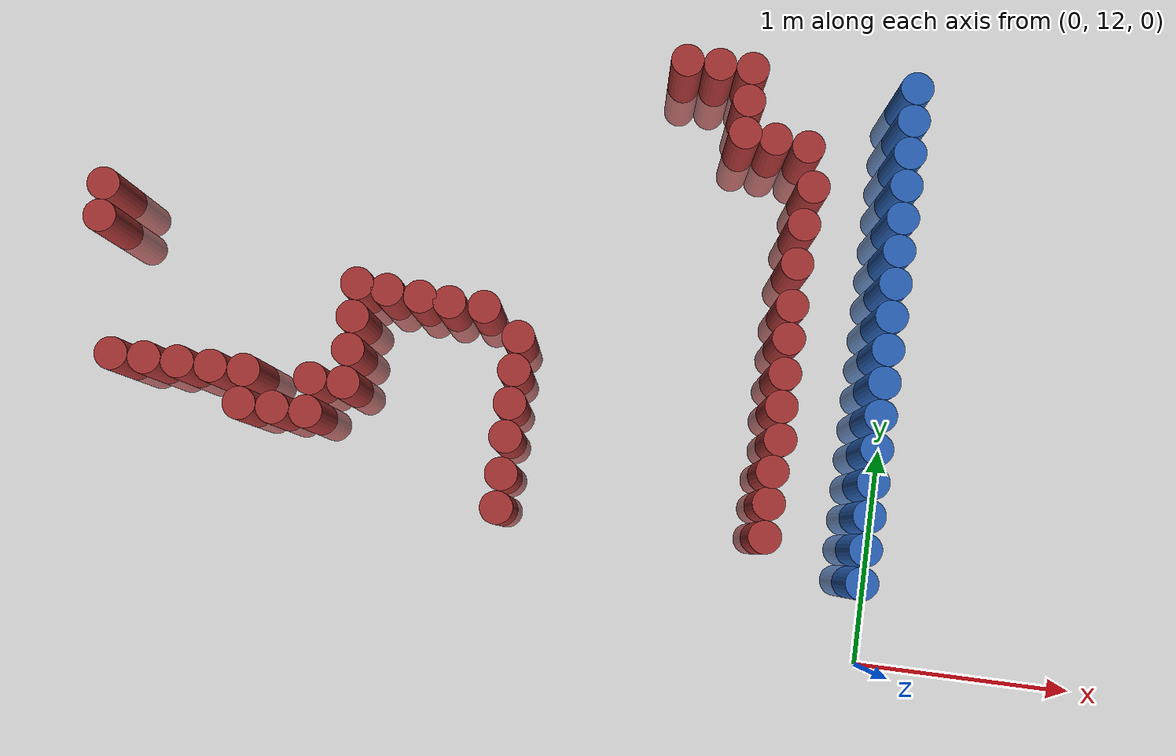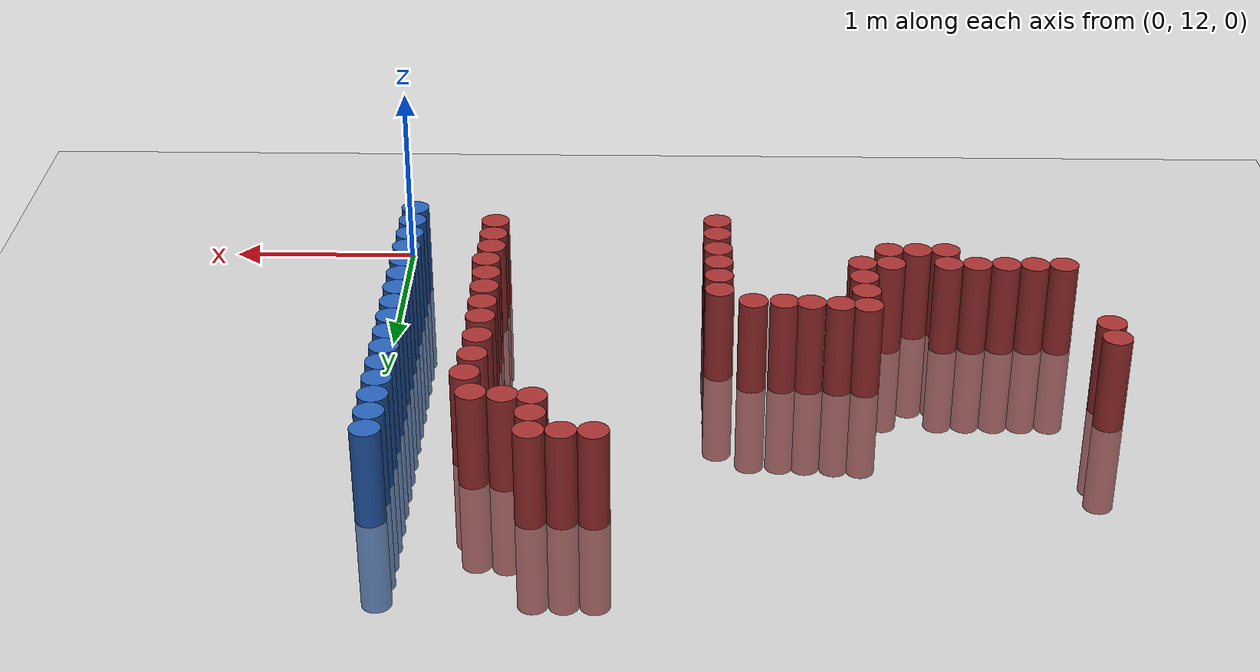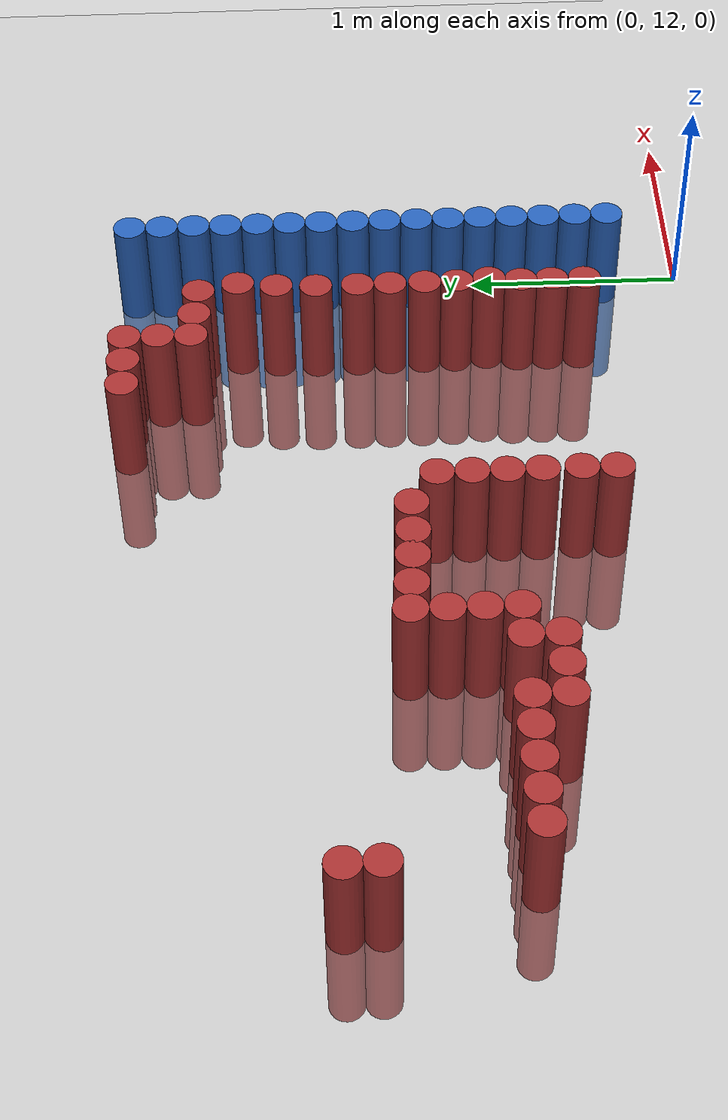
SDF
<sdf version="1.6">
 <world name="default">
  <model name="ground_plane">
   <static>1</static>
   <link name="link">
    <collision name="collision">
     <geometry><plane><normal>0 0 1</normal><size>100 100</size></plane></geometry>
     <surface><friction><ode><mu>100</mu><mu2>50</mu2></ode></friction></surface>
    </collision>
    <visual name="visual">
     <cast_shadows>0</cast_shadows>
     <geometry><plane><normal>0 0 1</normal><size>100 100</size></plane></geometry>
     <material>
      <script><uri>file://media/materials/scripts/gazebo.material</uri><name>Gazebo/Grey</name></script>
     </material>
    </visual>
   </link>
  </model>
  <model name="unit_cylinder_1194">
   <static>1</static>
   <pose>-3.525 12.975 0 0 -0 0</pose>
   <link name="link">
    <inertial>
     <mass>1</mass>
     <inertia><ixx>0.145833</ixx><ixy>0</ixy><ixz>0</ixz><iyy>0.145833</iyy><iyz>0</iyz><izz>0.125</izz></inertia>
    </inertial>
    <collision name="collision">
     <geometry><cylinder><radius>0.075</radius><length>1</length></cylinder></geometry>
    </collision>
    <visual name="visual">
     <geometry><cylinder><radius>0.075</radius><length>1</length></cylinder></geometry>
     <material><ambient>0.648 0.192 0.192 1</ambient><diffuse>0.648 0.192 0.192 1</diffuse></material>
     <material>
      <script><name>Gazebo/Grey</name><uri>file://media/materials/scripts/gazebo.material</uri></script>
     </material>
    </visual>
   </link>
  </model>
  <model name="unit_cylinder_1220">
   <static>1</static>
   <pose>-3.375 12.975 0 0 -0 0</pose>
   <link name="link">
    <inertial>
     <mass>1</mass>
     <inertia><ixx>0.145833</ixx><ixy>0</ixy><ixz>0</ixz><iyy>0.145833</iyy><iyz>0</iyz><izz>0.125</izz></inertia>
    </inertial>
    <collision name="collision">
     <geometry><cylinder><radius>0.075</radius><length>1</length></cylinder></geometry>
    </collision>
    <visual name="visual">
     <geometry><cylinder><radius>0.075</radius><length>1</length></cylinder></geometry>
     <material><ambient>0.648 0.192 0.192 1</ambient><diffuse>0.648 0.192 0.192 1</diffuse></material>
     <material>
      <script><name>Gazebo/Grey</name><uri>file://media/materials/scripts/gazebo.material</uri></script>
     </material>
    </visual>
   </link>
  </model>
  <model name="unit_cylinder_1238">
   <static>1</static>
   <pose>-3.225 12.975 0 0 -0 0</pose>
   <link name="link">
    <inertial>
     <mass>1</mass>
     <inertia><ixx>0.145833</ixx><ixy>0</ixy><ixz>0</ixz><iyy>0.145833</iyy><iyz>0</iyz><izz>0.125</izz></inertia>
    </inertial>
    <collision name="collision">
     <geometry><cylinder><radius>0.075</radius><length>1</length></cylinder></geometry>
    </collision>
    <visual name="visual">
     <geometry><cylinder><radius>0.075</radius><length>1</length></cylinder></geometry>
     <material><ambient>0.648 0.192 0.192 1</ambient><diffuse>0.648 0.192 0.192 1</diffuse></material>
     <material>
      <script><name>Gazebo/Grey</name><uri>file://media/materials/scripts/gazebo.material</uri></script>
     </material>
    </visual>
   </link>
  </model>
  <model name="unit_cylinder_1248">
   <static>1</static>
   <pose>-3.075 12.975 0 0 -0 0</pose>
   <link name="link">
    <inertial>
     <mass>1</mass>
     <inertia><ixx>0.145833</ixx><ixy>0</ixy><ixz>0</ixz><iyy>0.145833</iyy><iyz>0</iyz><izz>0.125</izz></inertia>
    </inertial>
    <collision name="collision">
     <geometry><cylinder><radius>0.075</radius><length>1</length></cylinder></geometry>
    </collision>
    <visual name="visual">
     <geometry><cylinder><radius>0.075</radius><length>1</length></cylinder></geometry>
     <material><ambient>0.648 0.192 0.192 1</ambient><diffuse>0.648 0.192 0.192 1</diffuse></material>
     <material>
      <script><name>Gazebo/Grey</name><uri>file://media/materials/scripts/gazebo.material</uri></script>
     </material>
    </visual>
   </link>
  </model>
  <model name="unit_cylinder_1261">
   <static>1</static>
   <pose>-2.925 12.825 0 0 -0 0</pose>
   <link name="link">
    <inertial>
     <mass>1</mass>
     <inertia><ixx>0.145833</ixx><ixy>0</ixy><ixz>0</ixz><iyy>0.145833</iyy><iyz>0</iyz><izz>0.125</izz></inertia>
    </inertial>
    <collision name="collision">
     <geometry><cylinder><radius>0.075</radius><length>1</length></cylinder></geometry>
    </collision>
    <visual name="visual">
     <geometry><cylinder><radius>0.075</radius><length>1</length></cylinder></geometry>
     <material><ambient>0.648 0.192 0.192 1</ambient><diffuse>0.648 0.192 0.192 1</diffuse></material>
     <material>
      <script><name>Gazebo/Grey</name><uri>file://media/materials/scripts/gazebo.material</uri></script>
     </material>
    </visual>
   </link>
  </model>
  <model name="unit_cylinder_1262">
   <static>1</static>
   <pose>-2.925 12.975 0 0 -0 0</pose>
   <link name="link">
    <inertial>
     <mass>1</mass>
     <inertia><ixx>0.145833</ixx><ixy>0</ixy><ixz>0</ixz><iyy>0.145833</iyy><iyz>0</iyz><izz>0.125</izz></inertia>
    </inertial>
    <collision name="collision">
     <geometry><cylinder><radius>0.075</radius><length>1</length></cylinder></geometry>
    </collision>
    <visual name="visual">
     <geometry><cylinder><radius>0.075</radius><length>1</length></cylinder></geometry>
     <material><ambient>0.648 0.192 0.192 1</ambient><diffuse>0.648 0.192 0.192 1</diffuse></material>
     <material>
      <script><name>Gazebo/Grey</name><uri>file://media/materials/scripts/gazebo.material</uri></script>
     </material>
    </visual>
   </link>
  </model>
  <model name="unit_cylinder_1270">
   <static>1</static>
   <pose>-2.775 12.825 0 0 -0 0</pose>
   <link name="link">
    <inertial>
     <mass>1</mass>
     <inertia><ixx>0.145833</ixx><ixy>0</ixy><ixz>0</ixz><iyy>0.145833</iyy><iyz>0</iyz><izz>0.125</izz></inertia>
    </inertial>
    <collision name="collision">
     <geometry><cylinder><radius>0.075</radius><length>1</length></cylinder></geometry>
    </collision>
    <visual name="visual">
     <geometry><cylinder><radius>0.075</radius><length>1</length></cylinder></geometry>
     <material><ambient>0.648 0.192 0.192 1</ambient><diffuse>0.648 0.192 0.192 1</diffuse></material>
     <material>
      <script><name>Gazebo/Grey</name><uri>file://media/materials/scripts/gazebo.material</uri></script>
     </material>
    </visual>
   </link>
  </model>
  <model name="unit_cylinder_1283">
   <static>1</static>
   <pose>-2.625 12.825 0 0 -0 0</pose>
   <link name="link">
    <inertial>
     <mass>1</mass>
     <inertia><ixx>0.145833</ixx><ixy>0</ixy><ixz>0</ixz><iyy>0.145833</iyy><iyz>0</iyz><izz>0.125</izz></inertia>
    </inertial>
    <collision name="collision">
     <geometry><cylinder><radius>0.075</radius><length>1</length></cylinder></geometry>
    </collision>
    <visual name="visual">
     <geometry><cylinder><radius>0.075</radius><length>1</length></cylinder></geometry>
     <material><ambient>0.648 0.192 0.192 1</ambient><diffuse>0.648 0.192 0.192 1</diffuse></material>
     <material>
      <script><name>Gazebo/Grey</name><uri>file://media/materials/scripts/gazebo.material</uri></script>
     </material>
    </visual>
   </link>
  </model>
  <model name="unit_cylinder_1284">
   <static>1</static>
   <pose>-2.625 12.975 0 0 -0 0</pose>
   <link name="link">
    <inertial>
     <mass>1</mass>
     <inertia><ixx>0.145833</ixx><ixy>0</ixy><ixz>0</ixz><iyy>0.145833</iyy><iyz>0</iyz><izz>0.125</izz></inertia>
    </inertial>
    <collision name="collision">
     <geometry><cylinder><radius>0.075</radius><length>1</length></cylinder></geometry>
    </collision>
    <visual name="visual">
     <geometry><cylinder><radius>0.075</radius><length>1</length></cylinder></geometry>
     <material><ambient>0.648 0.192 0.192 1</ambient><diffuse>0.648 0.192 0.192 1</diffuse></material>
     <material>
      <script><name>Gazebo/Grey</name><uri>file://media/materials/scripts/gazebo.material</uri></script>
     </material>
    </visual>
   </link>
  </model>
  <model name="unit_cylinder_1288">
   <static>1</static>
   <pose>-2.475 12.975 0 0 -0 0</pose>
   <link name="link">
    <inertial>
     <mass>1</mass>
     <inertia><ixx>0.145833</ixx><ixy>0</ixy><ixz>0</ixz><iyy>0.145833</iyy><iyz>0</iyz><izz>0.125</izz></inertia>
    </inertial>
    <collision name="collision">
     <geometry><cylinder><radius>0.075</radius><length>1</length></cylinder></geometry>
    </collision>
    <visual name="visual">
     <geometry><cylinder><radius>0.075</radius><length>1</length></cylinder></geometry>
     <material><ambient>0.648 0.192 0.192 1</ambient><diffuse>0.648 0.192 0.192 1</diffuse></material>
     <material>
      <script><name>Gazebo/Grey</name><uri>file://media/materials/scripts/gazebo.material</uri></script>
     </material>
    </visual>
   </link>
  </model>
  <model name="unit_cylinder_1289">
   <static>1</static>
   <pose>-2.475 13.125 0 0 -0 0</pose>
   <link name="link">
    <inertial>
     <mass>1</mass>
     <inertia><ixx>0.145833</ixx><ixy>0</ixy><ixz>0</ixz><iyy>0.145833</iyy><iyz>0</iyz><izz>0.125</izz></inertia>
    </inertial>
    <collision name="collision">
     <geometry><cylinder><radius>0.075</radius><length>1</length></cylinder></geometry>
    </collision>
    <visual name="visual">
     <geometry><cylinder><radius>0.075</radius><length>1</length></cylinder></geometry>
     <material><ambient>0.648 0.192 0.192 1</ambient><diffuse>0.648 0.192 0.192 1</diffuse></material>
     <material>
      <script><name>Gazebo/Grey</name><uri>file://media/materials/scripts/gazebo.material</uri></script>
     </material>
    </visual>
   </link>
  </model>
  <model name="unit_cylinder_1290">
   <static>1</static>
   <pose>-2.475 13.275 0 0 -0 0</pose>
   <link name="link">
    <inertial>
     <mass>1</mass>
     <inertia><ixx>0.145833</ixx><ixy>0</ixy><ixz>0</ixz><iyy>0.145833</iyy><iyz>0</iyz><izz>0.125</izz></inertia>
    </inertial>
    <collision name="collision">
     <geometry><cylinder><radius>0.075</radius><length>1</length></cylinder></geometry>
    </collision>
    <visual name="visual">
     <geometry><cylinder><radius>0.075</radius><length>1</length></cylinder></geometry>
     <material><ambient>0.648 0.192 0.192 1</ambient><diffuse>0.648 0.192 0.192 1</diffuse></material>
     <material>
      <script><name>Gazebo/Grey</name><uri>file://media/materials/scripts/gazebo.material</uri></script>
     </material>
    </visual>
   </link>
  </model>
  <model name="unit_cylinder_1291">
   <static>1</static>
   <pose>-2.475 13.425 0 0 -0 0</pose>
   <link name="link">
    <inertial>
     <mass>1</mass>
     <inertia><ixx>0.145833</ixx><ixy>0</ixy><ixz>0</ixz><iyy>0.145833</iyy><iyz>0</iyz><izz>0.125</izz></inertia>
    </inertial>
    <collision name="collision">
     <geometry><cylinder><radius>0.075</radius><length>1</length></cylinder></geometry>
    </collision>
    <visual name="visual">
     <geometry><cylinder><radius>0.075</radius><length>1</length></cylinder></geometry>
     <material><ambient>0.648 0.192 0.192 1</ambient><diffuse>0.648 0.192 0.192 1</diffuse></material>
     <material>
      <script><name>Gazebo/Grey</name><uri>file://media/materials/scripts/gazebo.material</uri></script>
     </material>
    </visual>
   </link>
  </model>
  <model name="unit_cylinder_1355">
   <static>1</static>
   <pose>-1.725 12.825 0 0 -0 0</pose>
   <link name="link">
    <inertial>
     <mass>1</mass>
     <inertia><ixx>0.145833</ixx><ixy>0</ixy><ixz>0</ixz><iyy>0.145833</iyy><iyz>0</iyz><izz>0.125</izz></inertia>
    </inertial>
    <collision name="collision">
     <geometry><cylinder><radius>0.075</radius><length>1</length></cylinder></geometry>
    </collision>
    <visual name="visual">
     <geometry><cylinder><radius>0.075</radius><length>1</length></cylinder></geometry>
     <material><ambient>0.648 0.192 0.192 1</ambient><diffuse>0.648 0.192 0.192 1</diffuse></material>
     <material>
      <script><name>Gazebo/Grey</name><uri>file://media/materials/scripts/gazebo.material</uri></script>
     </material>
    </visual>
   </link>
  </model>
  <model name="unit_cylinder_1356">
   <static>1</static>
   <pose>-1.725 12.975 0 0 -0 0</pose>
   <link name="link">
    <inertial>
     <mass>1</mass>
     <inertia><ixx>0.145833</ixx><ixy>0</ixy><ixz>0</ixz><iyy>0.145833</iyy><iyz>0</iyz><izz>0.125</izz></inertia>
    </inertial>
    <collision name="collision">
     <geometry><cylinder><radius>0.075</radius><length>1</length></cylinder></geometry>
    </collision>
    <visual name="visual">
     <geometry><cylinder><radius>0.075</radius><length>1</length></cylinder></geometry>
     <material><ambient>0.648 0.192 0.192 1</ambient><diffuse>0.648 0.192 0.192 1</diffuse></material>
     <material>
      <script><name>Gazebo/Grey</name><uri>file://media/materials/scripts/gazebo.material</uri></script>
     </material>
    </visual>
   </link>
  </model>
  <model name="unit_cylinder_1357">
   <static>1</static>
   <pose>-1.725 13.125 0 0 -0 0</pose>
   <link name="link">
    <inertial>
     <mass>1</mass>
     <inertia><ixx>0.145833</ixx><ixy>0</ixy><ixz>0</ixz><iyy>0.145833</iyy><iyz>0</iyz><izz>0.125</izz></inertia>
    </inertial>
    <collision name="collision">
     <geometry><cylinder><radius>0.075</radius><length>1</length></cylinder></geometry>
    </collision>
    <visual name="visual">
     <geometry><cylinder><radius>0.075</radius><length>1</length></cylinder></geometry>
     <material><ambient>0.648 0.192 0.192 1</ambient><diffuse>0.648 0.192 0.192 1</diffuse></material>
     <material>
      <script><name>Gazebo/Grey</name><uri>file://media/materials/scripts/gazebo.material</uri></script>
     </material>
    </visual>
   </link>
  </model>
  <model name="unit_cylinder_1358">
   <static>1</static>
   <pose>-1.725 13.275 0 0 -0 0</pose>
   <link name="link">
    <inertial>
     <mass>1</mass>
     <inertia><ixx>0.145833</ixx><ixy>0</ixy><ixz>0</ixz><iyy>0.145833</iyy><iyz>0</iyz><izz>0.125</izz></inertia>
    </inertial>
    <collision name="collision">
     <geometry><cylinder><radius>0.075</radius><length>1</length></cylinder></geometry>
    </collision>
    <visual name="visual">
     <geometry><cylinder><radius>0.075</radius><length>1</length></cylinder></geometry>
     <material><ambient>0.648 0.192 0.192 1</ambient><diffuse>0.648 0.192 0.192 1</diffuse></material>
     <material>
      <script><name>Gazebo/Grey</name><uri>file://media/materials/scripts/gazebo.material</uri></script>
     </material>
    </visual>
   </link>
  </model>
  <model name="unit_cylinder_1442">
   <static>1</static>
   <pose>-1.125 14.625 0 0 -0 0</pose>
   <link name="link">
    <inertial>
     <mass>1</mass>
     <inertia><ixx>0.145833</ixx><ixy>0</ixy><ixz>0</ixz><iyy>0.145833</iyy><iyz>0</iyz><izz>0.125</izz></inertia>
    </inertial>
    <collision name="collision">
     <geometry><cylinder><radius>0.075</radius><length>1</length></cylinder></geometry>
    </collision>
    <visual name="visual">
     <geometry><cylinder><radius>0.075</radius><length>1</length></cylinder></geometry>
     <material><ambient>0.648 0.192 0.192 1</ambient><diffuse>0.648 0.192 0.192 1</diffuse></material>
     <material>
      <script><name>Gazebo/Grey</name><uri>file://media/materials/scripts/gazebo.material</uri></script>
     </material>
    </visual>
   </link>
  </model>
  <model name="unit_cylinder_1465">
   <static>1</static>
   <pose>-0.975 14.625 0 0 -0 0</pose>
   <link name="link">
    <inertial>
     <mass>1</mass>
     <inertia><ixx>0.145833</ixx><ixy>0</ixy><ixz>0</ixz><iyy>0.145833</iyy><iyz>0</iyz><izz>0.125</izz></inertia>
    </inertial>
    <collision name="collision">
     <geometry><cylinder><radius>0.075</radius><length>1</length></cylinder></geometry>
    </collision>
    <visual name="visual">
     <geometry><cylinder><radius>0.075</radius><length>1</length></cylinder></geometry>
     <material><ambient>0.648 0.192 0.192 1</ambient><diffuse>0.648 0.192 0.192 1</diffuse></material>
     <material>
      <script><name>Gazebo/Grey</name><uri>file://media/materials/scripts/gazebo.material</uri></script>
     </material>
    </visual>
   </link>
  </model>
  <model name="unit_cylinder_1482">
   <static>1</static>
   <pose>-0.825 14.325 0 0 -0 0</pose>
   <link name="link">
    <inertial>
     <mass>1</mass>
     <inertia><ixx>0.145833</ixx><ixy>0</ixy><ixz>0</ixz><iyy>0.145833</iyy><iyz>0</iyz><izz>0.125</izz></inertia>
    </inertial>
    <collision name="collision">
     <geometry><cylinder><radius>0.075</radius><length>1</length></cylinder></geometry>
    </collision>
    <visual name="visual">
     <geometry><cylinder><radius>0.075</radius><length>1</length></cylinder></geometry>
     <material><ambient>0.648 0.192 0.192 1</ambient><diffuse>0.648 0.192 0.192 1</diffuse></material>
     <material>
      <script><name>Gazebo/Grey</name><uri>file://media/materials/scripts/gazebo.material</uri></script>
     </material>
    </visual>
   </link>
  </model>
  <model name="unit_cylinder_1483">
   <static>1</static>
   <pose>-0.825 14.475 0 0 -0 0</pose>
   <link name="link">
    <inertial>
     <mass>1</mass>
     <inertia><ixx>0.145833</ixx><ixy>0</ixy><ixz>0</ixz><iyy>0.145833</iyy><iyz>0</iyz><izz>0.125</izz></inertia>
    </inertial>
    <collision name="collision">
     <geometry><cylinder><radius>0.075</radius><length>1</length></cylinder></geometry>
    </collision>
    <visual name="visual">
     <geometry><cylinder><radius>0.075</radius><length>1</length></cylinder></geometry>
     <material><ambient>0.648 0.192 0.192 1</ambient><diffuse>0.648 0.192 0.192 1</diffuse></material>
     <material>
      <script><name>Gazebo/Grey</name><uri>file://media/materials/scripts/gazebo.material</uri></script>
     </material>
    </visual>
   </link>
  </model>
  <model name="unit_cylinder_1484">
   <static>1</static>
   <pose>-0.825 14.625 0 0 -0 0</pose>
   <link name="link">
    <inertial>
     <mass>1</mass>
     <inertia><ixx>0.145833</ixx><ixy>0</ixy><ixz>0</ixz><iyy>0.145833</iyy><iyz>0</iyz><izz>0.125</izz></inertia>
    </inertial>
    <collision name="collision">
     <geometry><cylinder><radius>0.075</radius><length>1</length></cylinder></geometry>
    </collision>
    <visual name="visual">
     <geometry><cylinder><radius>0.075</radius><length>1</length></cylinder></geometry>
     <material><ambient>0.648 0.192 0.192 1</ambient><diffuse>0.648 0.192 0.192 1</diffuse></material>
     <material>
      <script><name>Gazebo/Grey</name><uri>file://media/materials/scripts/gazebo.material</uri></script>
     </material>
    </visual>
   </link>
  </model>
  <model name="unit_cylinder_1522">
   <static>1</static>
   <pose>-0.525 12.525 0 0 -0 0</pose>
   <link name="link">
    <inertial>
     <mass>1</mass>
     <inertia><ixx>0.145833</ixx><ixy>0</ixy><ixz>0</ixz><iyy>0.145833</iyy><iyz>0</iyz><izz>0.125</izz></inertia>
    </inertial>
    <collision name="collision">
     <geometry><cylinder><radius>0.075</radius><length>1</length></cylinder></geometry>
    </collision>
    <visual name="visual">
     <geometry><cylinder><radius>0.075</radius><length>1</length></cylinder></geometry>
     <material><ambient>0.648 0.192 0.192 1</ambient><diffuse>0.648 0.192 0.192 1</diffuse></material>
     <material>
      <script><name>Gazebo/Grey</name><uri>file://media/materials/scripts/gazebo.material</uri></script>
     </material>
    </visual>
   </link>
  </model>
  <model name="unit_cylinder_1523">
   <static>1</static>
   <pose>-0.525 12.675 0 0 -0 0</pose>
   <link name="link">
    <inertial>
     <mass>1</mass>
     <inertia><ixx>0.145833</ixx><ixy>0</ixy><ixz>0</ixz><iyy>0.145833</iyy><iyz>0</iyz><izz>0.125</izz></inertia>
    </inertial>
    <collision name="collision">
     <geometry><cylinder><radius>0.075</radius><length>1</length></cylinder></geometry>
    </collision>
    <visual name="visual">
     <geometry><cylinder><radius>0.075</radius><length>1</length></cylinder></geometry>
     <material><ambient>0.648 0.192 0.192 1</ambient><diffuse>0.648 0.192 0.192 1</diffuse></material>
     <material>
      <script><name>Gazebo/Grey</name><uri>file://media/materials/scripts/gazebo.material</uri></script>
     </material>
    </visual>
   </link>
  </model>
  <model name="unit_cylinder_1602">
   <static>1</static>
   <pose>-0.075 12.375 0 0 -0 0</pose>
   <link name="link">
    <inertial>
     <mass>1</mass>
     <inertia><ixx>0.145833</ixx><ixy>0</ixy><ixz>0</ixz><iyy>0.145833</iyy><iyz>0</iyz><izz>0.125</izz></inertia>
    </inertial>
    <collision name="collision">
     <geometry><cylinder><radius>0.075</radius><length>1</length></cylinder></geometry>
    </collision>
    <visual name="visual">
     <geometry><cylinder><radius>0.075</radius><length>1</length></cylinder></geometry>
     <material><ambient>0.152 0.379 0.72 1</ambient><diffuse>0.152 0.379 0.72 1</diffuse></material>
     <material>
      <script><name>Gazebo/Grey</name><uri>file://media/materials/scripts/gazebo.material</uri></script>
     </material>
    </visual>
   </link>
  </model>
  <model name="unit_cylinder_1603">
   <static>1</static>
   <pose>-0.075 12.525 0 0 -0 0</pose>
   <link name="link">
    <inertial>
     <mass>1</mass>
     <inertia><ixx>0.145833</ixx><ixy>0</ixy><ixz>0</ixz><iyy>0.145833</iyy><iyz>0</iyz><izz>0.125</izz></inertia>
    </inertial>
    <collision name="collision">
     <geometry><cylinder><radius>0.075</radius><length>1</length></cylinder></geometry>
    </collision>
    <visual name="visual">
     <geometry><cylinder><radius>0.075</radius><length>1</length></cylinder></geometry>
     <material><ambient>0.152 0.379 0.72 1</ambient><diffuse>0.152 0.379 0.72 1</diffuse></material>
     <material>
      <script><name>Gazebo/Grey</name><uri>file://media/materials/scripts/gazebo.material</uri></script>
     </material>
    </visual>
   </link>
  </model>
  <model name="unit_cylinder_1604">
   <static>1</static>
   <pose>-0.075 12.675 0 0 -0 0</pose>
   <link name="link">
    <inertial>
     <mass>1</mass>
     <inertia><ixx>0.145833</ixx><ixy>0</ixy><ixz>0</ixz><iyy>0.145833</iyy><iyz>0</iyz><izz>0.125</izz></inertia>
    </inertial>
    <collision name="collision">
     <geometry><cylinder><radius>0.075</radius><length>1</length></cylinder></geometry>
    </collision>
    <visual name="visual">
     <geometry><cylinder><radius>0.075</radius><length>1</length></cylinder></geometry>
     <material><ambient>0.152 0.379 0.72 1</ambient><diffuse>0.152 0.379 0.72 1</diffuse></material>
     <material>
      <script><name>Gazebo/Grey</name><uri>file://media/materials/scripts/gazebo.material</uri></script>
     </material>
    </visual>
   </link>
  </model>
  <model name="unit_cylinder_1605">
   <static>1</static>
   <pose>-0.075 12.825 0 0 -0 0</pose>
   <link name="link">
    <inertial>
     <mass>1</mass>
     <inertia><ixx>0.145833</ixx><ixy>0</ixy><ixz>0</ixz><iyy>0.145833</iyy><iyz>0</iyz><izz>0.125</izz></inertia>
    </inertial>
    <collision name="collision">
     <geometry><cylinder><radius>0.075</radius><length>1</length></cylinder></geometry>
    </collision>
    <visual name="visual">
     <geometry><cylinder><radius>0.075</radius><length>1</length></cylinder></geometry>
     <material><ambient>0.152 0.379 0.72 1</ambient><diffuse>0.152 0.379 0.72 1</diffuse></material>
     <material>
      <script><name>Gazebo/Grey</name><uri>file://media/materials/scripts/gazebo.material</uri></script>
     </material>
    </visual>
   </link>
  </model>
  <model name="unit_cylinder_1606">
   <static>1</static>
   <pose>-0.075 12.975 0 0 -0 0</pose>
   <link name="link">
    <inertial>
     <mass>1</mass>
     <inertia><ixx>0.145833</ixx><ixy>0</ixy><ixz>0</ixz><iyy>0.145833</iyy><iyz>0</iyz><izz>0.125</izz></inertia>
    </inertial>
    <collision name="collision">
     <geometry><cylinder><radius>0.075</radius><length>1</length></cylinder></geometry>
    </collision>
    <visual name="visual">
     <geometry><cylinder><radius>0.075</radius><length>1</length></cylinder></geometry>
     <material><ambient>0.152 0.379 0.72 1</ambient><diffuse>0.152 0.379 0.72 1</diffuse></material>
     <material>
      <script><name>Gazebo/Grey</name><uri>file://media/materials/scripts/gazebo.material</uri></script>
     </material>
    </visual>
   </link>
  </model>
  <model name="unit_cylinder_1607">
   <static>1</static>
   <pose>-0.075 13.125 0 0 -0 0</pose>
   <link name="link">
    <inertial>
     <mass>1</mass>
     <inertia><ixx>0.145833</ixx><ixy>0</ixy><ixz>0</ixz><iyy>0.145833</iyy><iyz>0</iyz><izz>0.125</izz></inertia>
    </inertial>
    <collision name="collision">
     <geometry><cylinder><radius>0.075</radius><length>1</length></cylinder></geometry>
    </collision>
    <visual name="visual">
     <geometry><cylinder><radius>0.075</radius><length>1</length></cylinder></geometry>
     <material><ambient>0.152 0.379 0.72 1</ambient><diffuse>0.152 0.379 0.72 1</diffuse></material>
     <material>
      <script><name>Gazebo/Grey</name><uri>file://media/materials/scripts/gazebo.material</uri></script>
     </material>
    </visual>
   </link>
  </model>
  <model name="unit_cylinder_1608">
   <static>1</static>
   <pose>-0.075 13.275 0 0 -0 0</pose>
   <link name="link">
    <inertial>
     <mass>1</mass>
     <inertia><ixx>0.145833</ixx><ixy>0</ixy><ixz>0</ixz><iyy>0.145833</iyy><iyz>0</iyz><izz>0.125</izz></inertia>
    </inertial>
    <collision name="collision">
     <geometry><cylinder><radius>0.075</radius><length>1</length></cylinder></geometry>
    </collision>
    <visual name="visual">
     <geometry><cylinder><radius>0.075</radius><length>1</length></cylinder></geometry>
     <material><ambient>0.152 0.379 0.72 1</ambient><diffuse>0.152 0.379 0.72 1</diffuse></material>
     <material>
      <script><name>Gazebo/Grey</name><uri>file://media/materials/scripts/gazebo.material</uri></script>
     </material>
    </visual>
   </link>
  </model>
  <model name="unit_cylinder_1609">
   <static>1</static>
   <pose>-0.075 13.425 0 0 -0 0</pose>
   <link name="link">
    <inertial>
     <mass>1</mass>
     <inertia><ixx>0.145833</ixx><ixy>0</ixy><ixz>0</ixz><iyy>0.145833</iyy><iyz>0</iyz><izz>0.125</izz></inertia>
    </inertial>
    <collision name="collision">
     <geometry><cylinder><radius>0.075</radius><length>1</length></cylinder></geometry>
    </collision>
    <visual name="visual">
     <geometry><cylinder><radius>0.075</radius><length>1</length></cylinder></geometry>
     <material><ambient>0.152 0.379 0.72 1</ambient><diffuse>0.152 0.379 0.72 1</diffuse></material>
     <material>
      <script><name>Gazebo/Grey</name><uri>file://media/materials/scripts/gazebo.material</uri></script>
     </material>
    </visual>
   </link>
  </model>
  <model name="unit_cylinder_1610">
   <static>1</static>
   <pose>-0.075 13.575 0 0 -0 0</pose>
   <link name="link">
    <inertial>
     <mass>1</mass>
     <inertia><ixx>0.145833</ixx><ixy>0</ixy><ixz>0</ixz><iyy>0.145833</iyy><iyz>0</iyz><izz>0.125</izz></inertia>
    </inertial>
    <collision name="collision">
     <geometry><cylinder><radius>0.075</radius><length>1</length></cylinder></geometry>
    </collision>
    <visual name="visual">
     <geometry><cylinder><radius>0.075</radius><length>1</length></cylinder></geometry>
     <material><ambient>0.152 0.379 0.72 1</ambient><diffuse>0.152 0.379 0.72 1</diffuse></material>
     <material>
      <script><name>Gazebo/Grey</name><uri>file://media/materials/scripts/gazebo.material</uri></script>
     </material>
    </visual>
   </link>
  </model>
  <model name="unit_cylinder_1611">
   <static>1</static>
   <pose>-0.075 13.725 0 0 -0 0</pose>
   <link name="link">
    <inertial>
     <mass>1</mass>
     <inertia><ixx>0.145833</ixx><ixy>0</ixy><ixz>0</ixz><iyy>0.145833</iyy><iyz>0</iyz><izz>0.125</izz></inertia>
    </inertial>
    <collision name="collision">
     <geometry><cylinder><radius>0.075</radius><length>1</length></cylinder></geometry>
    </collision>
    <visual name="visual">
     <geometry><cylinder><radius>0.075</radius><length>1</length></cylinder></geometry>
     <material><ambient>0.152 0.379 0.72 1</ambient><diffuse>0.152 0.379 0.72 1</diffuse></material>
     <material>
      <script><name>Gazebo/Grey</name><uri>file://media/materials/scripts/gazebo.material</uri></script>
     </material>
    </visual>
   </link>
  </model>
  <model name="unit_cylinder_1612">
   <static>1</static>
   <pose>-0.075 13.875 0 0 -0 0</pose>
   <link name="link">
    <inertial>
     <mass>1</mass>
     <inertia><ixx>0.145833</ixx><ixy>0</ixy><ixz>0</ixz><iyy>0.145833</iyy><iyz>0</iyz><izz>0.125</izz></inertia>
    </inertial>
    <collision name="collision">
     <geometry><cylinder><radius>0.075</radius><length>1</length></cylinder></geometry>
    </collision>
    <visual name="visual">
     <geometry><cylinder><radius>0.075</radius><length>1</length></cylinder></geometry>
     <material><ambient>0.152 0.379 0.72 1</ambient><diffuse>0.152 0.379 0.72 1</diffuse></material>
     <material>
      <script><name>Gazebo/Grey</name><uri>file://media/materials/scripts/gazebo.material</uri></script>
     </material>
    </visual>
   </link>
  </model>
  <model name="unit_cylinder_1613">
   <static>1</static>
   <pose>-0.075 14.025 0 0 -0 0</pose>
   <link name="link">
    <inertial>
     <mass>1</mass>
     <inertia><ixx>0.145833</ixx><ixy>0</ixy><ixz>0</ixz><iyy>0.145833</iyy><iyz>0</iyz><izz>0.125</izz></inertia>
    </inertial>
    <collision name="collision">
     <geometry><cylinder><radius>0.075</radius><length>1</length></cylinder></geometry>
    </collision>
    <visual name="visual">
     <geometry><cylinder><radius>0.075</radius><length>1</length></cylinder></geometry>
     <material><ambient>0.152 0.379 0.72 1</ambient><diffuse>0.152 0.379 0.72 1</diffuse></material>
     <material>
      <script><name>Gazebo/Grey</name><uri>file://media/materials/scripts/gazebo.material</uri></script>
     </material>
    </visual>
   </link>
  </model>
  <model name="unit_cylinder_1614">
   <static>1</static>
   <pose>-0.075 14.175 0 0 -0 0</pose>
   <link name="link">
    <inertial>
     <mass>1</mass>
     <inertia><ixx>0.145833</ixx><ixy>0</ixy><ixz>0</ixz><iyy>0.145833</iyy><iyz>0</iyz><izz>0.125</izz></inertia>
    </inertial>
    <collision name="collision">
     <geometry><cylinder><radius>0.075</radius><length>1</length></cylinder></geometry>
    </collision>
    <visual name="visual">
     <geometry><cylinder><radius>0.075</radius><length>1</length></cylinder></geometry>
     <material><ambient>0.152 0.379 0.72 1</ambient><diffuse>0.152 0.379 0.72 1</diffuse></material>
     <material>
      <script><name>Gazebo/Grey</name><uri>file://media/materials/scripts/gazebo.material</uri></script>
     </material>
    </visual>
   </link>
  </model>
  <model name="unit_cylinder_1615">
   <static>1</static>
   <pose>-0.075 14.325 0 0 -0 0</pose>
   <link name="link">
    <inertial>
     <mass>1</mass>
     <inertia><ixx>0.145833</ixx><ixy>0</ixy><ixz>0</ixz><iyy>0.145833</iyy><iyz>0</iyz><izz>0.125</izz></inertia>
    </inertial>
    <collision name="collision">
     <geometry><cylinder><radius>0.075</radius><length>1</length></cylinder></geometry>
    </collision>
    <visual name="visual">
     <geometry><cylinder><radius>0.075</radius><length>1</length></cylinder></geometry>
     <material><ambient>0.152 0.379 0.72 1</ambient><diffuse>0.152 0.379 0.72 1</diffuse></material>
     <material>
      <script><name>Gazebo/Grey</name><uri>file://media/materials/scripts/gazebo.material</uri></script>
     </material>
    </visual>
   </link>
  </model>
  <model name="unit_cylinder_1616">
   <static>1</static>
   <pose>-0.075 14.475 0 0 -0 0</pose>
   <link name="link">
    <inertial>
     <mass>1</mass>
     <inertia><ixx>0.145833</ixx><ixy>0</ixy><ixz>0</ixz><iyy>0.145833</iyy><iyz>0</iyz><izz>0.125</izz></inertia>
    </inertial>
    <collision name="collision">
     <geometry><cylinder><radius>0.075</radius><length>1</length></cylinder></geometry>
    </collision>
    <visual name="visual">
     <geometry><cylinder><radius>0.075</radius><length>1</length></cylinder></geometry>
     <material><ambient>0.152 0.379 0.72 1</ambient><diffuse>0.152 0.379 0.72 1</diffuse></material>
     <material>
      <script><name>Gazebo/Grey</name><uri>file://media/materials/scripts/gazebo.material</uri></script>
     </material>
    </visual>
   </link>
  </model>
  <model name="unit_cylinder_1617">
   <static>1</static>
   <pose>-0.075 14.625 0 0 -0 0</pose>
   <link name="link">
    <inertial>
     <mass>1</mass>
     <inertia><ixx>0.145833</ixx><ixy>0</ixy><ixz>0</ixz><iyy>0.145833</iyy><iyz>0</iyz><izz>0.125</izz></inertia>
    </inertial>
    <collision name="collision">
     <geometry><cylinder><radius>0.075</radius><length>1</length></cylinder></geometry>
    </collision>
    <visual name="visual">
     <geometry><cylinder><radius>0.075</radius><length>1</length></cylinder></geometry>
     <material><ambient>0.152 0.379 0.72 1</ambient><diffuse>0.152 0.379 0.72 1</diffuse></material>
     <material>
      <script><name>Gazebo/Grey</name><uri>file://media/materials/scripts/gazebo.material</uri></script>
     </material>
    </visual>
   </link>
  </model>
  <model name="unit_cylinder_1355_clone">
   <static>1</static>
   <pose>-1.72255 12.6582 0 0 -0 0</pose>
   <link name="link">
    <inertial>
     <mass>1</mass>
     <inertia><ixx>0.145833</ixx><ixy>0</ixy><ixz>0</ixz><iyy>0.145833</iyy><iyz>0</iyz><izz>0.125</izz></inertia>
    </inertial>
    <collision name="collision">
     <geometry><cylinder><radius>0.075</radius><length>1</length></cylinder></geometry>
    </collision>
    <visual name="visual">
     <geometry><cylinder><radius>0.075</radius><length>1</length></cylinder></geometry>
     <material><ambient>0.648 0.192 0.192 1</ambient><diffuse>0.648 0.192 0.192 1</diffuse></material>
     <material>
      <script><name>Gazebo/Grey</name><uri>file://media/materials/scripts/gazebo.material</uri></script>
     </material>
    </visual>
   </link>
  </model>
  <model name="unit_cylinder_1355_clone_0">
   <static>1</static>
   <pose>-1.72459 12.5067 0 0 -0 0</pose>
   <link name="link">
    <inertial>
     <mass>1</mass>
     <inertia><ixx>0.145833</ixx><ixy>0</ixy><ixz>0</ixz><iyy>0.145833</iyy><iyz>0</iyz><izz>0.125</izz></inertia>
    </inertial>
    <collision name="collision">
     <geometry><cylinder><radius>0.075</radius><length>1</length></cylinder></geometry>
    </collision>
    <visual name="visual">
     <geometry><cylinder><radius>0.075</radius><length>1</length></cylinder></geometry>
     <material><ambient>0.648 0.192 0.192 1</ambient><diffuse>0.648 0.192 0.192 1</diffuse></material>
     <material>
      <script><name>Gazebo/Grey</name><uri>file://media/materials/scripts/gazebo.material</uri></script>
     </material>
    </visual>
   </link>
  </model>
  <model name="unit_cylinder_1523_clone">
   <static>1</static>
   <pose>-0.524986 12.8176 0 0 -0 0</pose>
   <link name="link">
    <inertial>
     <mass>1</mass>
     <inertia><ixx>0.145833</ixx><ixy>0</ixy><ixz>0</ixz><iyy>0.145833</iyy><iyz>0</iyz><izz>0.125</izz></inertia>
    </inertial>
    <collision name="collision">
     <geometry><cylinder><radius>0.075</radius><length>1</length></cylinder></geometry>
    </collision>
    <visual name="visual">
     <geometry><cylinder><radius>0.075</radius><length>1</length></cylinder></geometry>
     <material><ambient>0.648 0.192 0.192 1</ambient><diffuse>0.648 0.192 0.192 1</diffuse></material>
     <material>
      <script><name>Gazebo/Grey</name><uri>file://media/materials/scripts/gazebo.material</uri></script>
     </material>
    </visual>
   </link>
  </model>
  <model name="unit_cylinder_1523_clone_0">
   <static>1</static>
   <pose>-0.507057 12.9635 0 0 -0 0</pose>
   <link name="link">
    <inertial>
     <mass>1</mass>
     <inertia><ixx>0.145833</ixx><ixy>0</ixy><ixz>0</ixz><iyy>0.145833</iyy><iyz>0</iyz><izz>0.125</izz></inertia>
    </inertial>
    <collision name="collision">
     <geometry><cylinder><radius>0.075</radius><length>1</length></cylinder></geometry>
    </collision>
    <visual name="visual">
     <geometry><cylinder><radius>0.075</radius><length>1</length></cylinder></geometry>
     <material><ambient>0.648 0.192 0.192 1</ambient><diffuse>0.648 0.192 0.192 1</diffuse></material>
     <material>
      <script><name>Gazebo/Grey</name><uri>file://media/materials/scripts/gazebo.material</uri></script>
     </material>
    </visual>
   </link>
  </model>
  <model name="unit_cylinder_1523_clone_1">
   <static>1</static>
   <pose>-0.51865 13.1115 0 0 -0 0</pose>
   <link name="link">
    <inertial>
     <mass>1</mass>
     <inertia><ixx>0.145833</ixx><ixy>0</ixy><ixz>0</ixz><iyy>0.145833</iyy><iyz>0</iyz><izz>0.125</izz></inertia>
    </inertial>
    <collision name="collision">
     <geometry><cylinder><radius>0.075</radius><length>1</length></cylinder></geometry>
    </collision>
    <visual name="visual">
     <geometry><cylinder><radius>0.075</radius><length>1</length></cylinder></geometry>
     <material><ambient>0.648 0.192 0.192 1</ambient><diffuse>0.648 0.192 0.192 1</diffuse></material>
     <material>
      <script><name>Gazebo/Grey</name><uri>file://media/materials/scripts/gazebo.material</uri></script>
     </material>
    </visual>
   </link>
  </model>
  <model name="unit_cylinder_1523_clone_2">
   <static>1</static>
   <pose>-0.520412 13.2599 0 0 -0 0</pose>
   <link name="link">
    <inertial>
     <mass>1</mass>
     <inertia><ixx>0.145833</ixx><ixy>0</ixy><ixz>0</ixz><iyy>0.145833</iyy><iyz>0</iyz><izz>0.125</izz></inertia>
    </inertial>
    <collision name="collision">
     <geometry><cylinder><radius>0.075</radius><length>1</length></cylinder></geometry>
    </collision>
    <visual name="visual">
     <geometry><cylinder><radius>0.075</radius><length>1</length></cylinder></geometry>
     <material><ambient>0.648 0.192 0.192 1</ambient><diffuse>0.648 0.192 0.192 1</diffuse></material>
     <material>
      <script><name>Gazebo/Grey</name><uri>file://media/materials/scripts/gazebo.material</uri></script>
     </material>
    </visual>
   </link>
  </model>
  <model name="unit_cylinder_1523_clone_3">
   <static>1</static>
   <pose>-0.521641 13.4187 0 0 -0 0</pose>
   <link name="link">
    <inertial>
     <mass>1</mass>
     <inertia><ixx>0.145833</ixx><ixy>0</ixy><ixz>0</ixz><iyy>0.145833</iyy><iyz>0</iyz><izz>0.125</izz></inertia>
    </inertial>
    <collision name="collision">
     <geometry><cylinder><radius>0.075</radius><length>1</length></cylinder></geometry>
    </collision>
    <visual name="visual">
     <geometry><cylinder><radius>0.075</radius><length>1</length></cylinder></geometry>
     <material><ambient>0.648 0.192 0.192 1</ambient><diffuse>0.648 0.192 0.192 1</diffuse></material>
     <material>
      <script><name>Gazebo/Grey</name><uri>file://media/materials/scripts/gazebo.material</uri></script>
     </material>
    </visual>
   </link>
  </model>
  <model name="unit_cylinder_1523_clone_4">
   <static>1</static>
   <pose>-0.523418 13.5685 0 0 -0 0</pose>
   <link name="link">
    <inertial>
     <mass>1</mass>
     <inertia><ixx>0.145833</ixx><ixy>0</ixy><ixz>0</ixz><iyy>0.145833</iyy><iyz>0</iyz><izz>0.125</izz></inertia>
    </inertial>
    <collision name="collision">
     <geometry><cylinder><radius>0.075</radius><length>1</length></cylinder></geometry>
    </collision>
    <visual name="visual">
     <geometry><cylinder><radius>0.075</radius><length>1</length></cylinder></geometry>
     <material><ambient>0.648 0.192 0.192 1</ambient><diffuse>0.648 0.192 0.192 1</diffuse></material>
     <material>
      <script><name>Gazebo/Grey</name><uri>file://media/materials/scripts/gazebo.material</uri></script>
     </material>
    </visual>
   </link>
  </model>
  <model name="unit_cylinder_1523_clone_5">
   <static>1</static>
   <pose>-0.523023 13.7593 0 0 -0 0</pose>
   <link name="link">
    <inertial>
     <mass>1</mass>
     <inertia><ixx>0.145833</ixx><ixy>0</ixy><ixz>0</ixz><iyy>0.145833</iyy><iyz>0</iyz><izz>0.125</izz></inertia>
    </inertial>
    <collision name="collision">
     <geometry><cylinder><radius>0.075</radius><length>1</length></cylinder></geometry>
    </collision>
    <visual name="visual">
     <geometry><cylinder><radius>0.075</radius><length>1</length></cylinder></geometry>
     <material><ambient>0.648 0.192 0.192 1</ambient><diffuse>0.648 0.192 0.192 1</diffuse></material>
     <material>
      <script><name>Gazebo/Grey</name><uri>file://media/materials/scripts/gazebo.material</uri></script>
     </material>
    </visual>
   </link>
  </model>
  <model name="unit_cylinder_1523_clone_6">
   <static>1</static>
   <pose>-0.51316 13.9405 0 0 -0 0</pose>
   <link name="link">
    <inertial>
     <mass>1</mass>
     <inertia><ixx>0.145833</ixx><ixy>0</ixy><ixz>0</ixz><iyy>0.145833</iyy><iyz>0</iyz><izz>0.125</izz></inertia>
    </inertial>
    <collision name="collision">
     <geometry><cylinder><radius>0.075</radius><length>1</length></cylinder></geometry>
    </collision>
    <visual name="visual">
     <geometry><cylinder><radius>0.075</radius><length>1</length></cylinder></geometry>
     <material><ambient>0.648 0.192 0.192 1</ambient><diffuse>0.648 0.192 0.192 1</diffuse></material>
     <material>
      <script><name>Gazebo/Grey</name><uri>file://media/materials/scripts/gazebo.material</uri></script>
     </material>
    </visual>
   </link>
  </model>
  <model name="unit_cylinder_1173_clone">
   <static>1</static>
   <pose>-3.66887 13.5862 0 0 -0 0</pose>
   <link name="link">
    <inertial>
     <mass>1</mass>
     <inertia><ixx>0.145833</ixx><ixy>0</ixy><ixz>0</ixz><iyy>0.145833</iyy><iyz>0</iyz><izz>0.125</izz></inertia>
    </inertial>
    <collision name="collision">
     <geometry><cylinder><radius>0.075</radius><length>1</length></cylinder></geometry>
    </collision>
    <visual name="visual">
     <geometry><cylinder><radius>0.075</radius><length>1</length></cylinder></geometry>
     <material><ambient>0.648 0.192 0.192 1</ambient><diffuse>0.648 0.192 0.192 1</diffuse></material>
     <material>
      <script><name>Gazebo/Grey</name><uri>file://media/materials/scripts/gazebo.material</uri></script>
     </material>
    </visual>
   </link>
  </model>
  <model name="unit_cylinder_1173_clone_clone">
   <static>1</static>
   <pose>-3.67274 13.7337 0 0 -0 0</pose>
   <link name="link">
    <inertial>
     <mass>1</mass>
     <inertia><ixx>0.145833</ixx><ixy>0</ixy><ixz>0</ixz><iyy>0.145833</iyy><iyz>0</iyz><izz>0.125</izz></inertia>
    </inertial>
    <collision name="collision">
     <geometry><cylinder><radius>0.075</radius><length>1</length></cylinder></geometry>
    </collision>
    <visual name="visual">
     <geometry><cylinder><radius>0.075</radius><length>1</length></cylinder></geometry>
     <material><ambient>0.648 0.192 0.192 1</ambient><diffuse>0.648 0.192 0.192 1</diffuse></material>
     <material>
      <script><name>Gazebo/Grey</name><uri>file://media/materials/scripts/gazebo.material</uri></script>
     </material>
    </visual>
   </link>
  </model>
  <model name="unit_cylinder_1291_clone">
   <static>1</static>
   <pose>-2.33645 13.4126 0 0 -0 0</pose>
   <link name="link">
    <inertial>
     <mass>1</mass>
     <inertia><ixx>0.145833</ixx><ixy>0</ixy><ixz>0</ixz><iyy>0.145833</iyy><iyz>0</iyz><izz>0.125</izz></inertia>
    </inertial>
    <collision name="collision">
     <geometry><cylinder><radius>0.075</radius><length>1</length></cylinder></geometry>
    </collision>
    <visual name="visual">
     <geometry><cylinder><radius>0.075</radius><length>1</length></cylinder></geometry>
     <material><ambient>0.648 0.192 0.192 1</ambient><diffuse>0.648 0.192 0.192 1</diffuse></material>
     <material>
      <script><name>Gazebo/Grey</name><uri>file://media/materials/scripts/gazebo.material</uri></script>
     </material>
    </visual>
   </link>
  </model>
  <model name="unit_cylinder_1291_clone_0">
   <static>1</static>
   <pose>-2.1867 13.4007 0 0 -0 0</pose>
   <link name="link">
    <inertial>
     <mass>1</mass>
     <inertia><ixx>0.145833</ixx><ixy>0</ixy><ixz>0</ixz><iyy>0.145833</iyy><iyz>0</iyz><izz>0.125</izz></inertia>
    </inertial>
    <collision name="collision">
     <geometry><cylinder><radius>0.075</radius><length>1</length></cylinder></geometry>
    </collision>
    <visual name="visual">
     <geometry><cylinder><radius>0.075</radius><length>1</length></cylinder></geometry>
     <material><ambient>0.648 0.192 0.192 1</ambient><diffuse>0.648 0.192 0.192 1</diffuse></material>
     <material>
      <script><name>Gazebo/Grey</name><uri>file://media/materials/scripts/gazebo.material</uri></script>
     </material>
    </visual>
   </link>
  </model>
  <model name="unit_cylinder_1291_clone_1">
   <static>1</static>
   <pose>-2.05184 13.3925 0 0 -0 0</pose>
   <link name="link">
    <inertial>
     <mass>1</mass>
     <inertia><ixx>0.145833</ixx><ixy>0</ixy><ixz>0</ixz><iyy>0.145833</iyy><iyz>0</iyz><izz>0.125</izz></inertia>
    </inertial>
    <collision name="collision">
     <geometry><cylinder><radius>0.075</radius><length>1</length></cylinder></geometry>
    </collision>
    <visual name="visual">
     <geometry><cylinder><radius>0.075</radius><length>1</length></cylinder></geometry>
     <material><ambient>0.648 0.192 0.192 1</ambient><diffuse>0.648 0.192 0.192 1</diffuse></material>
     <material>
      <script><name>Gazebo/Grey</name><uri>file://media/materials/scripts/gazebo.material</uri></script>
     </material>
    </visual>
   </link>
  </model>
  <model name="unit_cylinder_1291_clone_2">
   <static>1</static>
   <pose>-1.89417 13.3907 0 0 -0 0</pose>
   <link name="link">
    <inertial>
     <mass>1</mass>
     <inertia><ixx>0.145833</ixx><ixy>0</ixy><ixz>0</ixz><iyy>0.145833</iyy><iyz>0</iyz><izz>0.125</izz></inertia>
    </inertial>
    <collision name="collision">
     <geometry><cylinder><radius>0.075</radius><length>1</length></cylinder></geometry>
    </collision>
    <visual name="visual">
     <geometry><cylinder><radius>0.075</radius><length>1</length></cylinder></geometry>
     <material><ambient>0.648 0.192 0.192 1</ambient><diffuse>0.648 0.192 0.192 1</diffuse></material>
     <material>
      <script><name>Gazebo/Grey</name><uri>file://media/materials/scripts/gazebo.material</uri></script>
     </material>
    </visual>
   </link>
  </model>
  <model name="unit_cylinder_1482_clone">
   <static>1</static>
   <pose>-0.684644 14.3136 0 0 -0 0</pose>
   <link name="link">
    <inertial>
     <mass>1</mass>
     <inertia><ixx>0.145833</ixx><ixy>0</ixy><ixz>0</ixz><iyy>0.145833</iyy><iyz>0</iyz><izz>0.125</izz></inertia>
    </inertial>
    <collision name="collision">
     <geometry><cylinder><radius>0.075</radius><length>1</length></cylinder></geometry>
    </collision>
    <visual name="visual">
     <geometry><cylinder><radius>0.075</radius><length>1</length></cylinder></geometry>
     <material><ambient>0.648 0.192 0.192 1</ambient><diffuse>0.648 0.192 0.192 1</diffuse></material>
     <material>
      <script><name>Gazebo/Grey</name><uri>file://media/materials/scripts/gazebo.material</uri></script>
     </material>
    </visual>
   </link>
  </model>
  <model name="unit_cylinder_1482_clone_0">
   <static>1</static>
   <pose>-0.533535 14.2964 0 0 -0 0</pose>
   <link name="link">
    <inertial>
     <mass>1</mass>
     <inertia><ixx>0.145833</ixx><ixy>0</ixy><ixz>0</ixz><iyy>0.145833</iyy><iyz>0</iyz><izz>0.125</izz></inertia>
    </inertial>
    <collision name="collision">
     <geometry><cylinder><radius>0.075</radius><length>1</length></cylinder></geometry>
    </collision>
    <visual name="visual">
     <geometry><cylinder><radius>0.075</radius><length>1</length></cylinder></geometry>
     <material><ambient>0.648 0.192 0.192 1</ambient><diffuse>0.648 0.192 0.192 1</diffuse></material>
     <material>
      <script><name>Gazebo/Grey</name><uri>file://media/materials/scripts/gazebo.material</uri></script>
     </material>
    </visual>
   </link>
  </model>
  <model name="unit_cylinder_1482_clone_1">
   <static>1</static>
   <pose>-0.490515 14.1164 0 0 -0 0</pose>
   <link name="link">
    <inertial>
     <mass>1</mass>
     <inertia><ixx>0.145833</ixx><ixy>0</ixy><ixz>0</ixz><iyy>0.145833</iyy><iyz>0</iyz><izz>0.125</izz></inertia>
    </inertial>
    <collision name="collision">
     <geometry><cylinder><radius>0.075</radius><length>1</length></cylinder></geometry>
    </collision>
    <visual name="visual">
     <geometry><cylinder><radius>0.075</radius><length>1</length></cylinder></geometry>
     <material><ambient>0.648 0.192 0.192 1</ambient><diffuse>0.648 0.192 0.192 1</diffuse></material>
     <material>
      <script><name>Gazebo/Grey</name><uri>file://media/materials/scripts/gazebo.material</uri></script>
     </material>
    </visual>
   </link>
  </model>
 </world>
</sdf>
